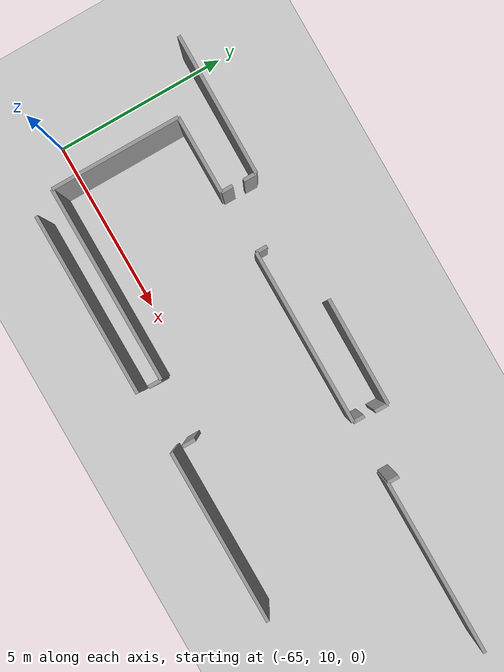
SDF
<sdf version="1.6">
 <world name="default">
  <model name="ground_plane">
   <static>1</static>
   <link name="link">
    <collision name="collision">
     <geometry><plane><normal>0 0 1</normal><size>100 100</size></plane></geometry>
     <surface><friction><ode><mu>100</mu><mu2>50</mu2></ode></friction></surface>
    </collision>
    <visual name="visual">
     <cast_shadows>0</cast_shadows>
     <geometry><plane><normal>0 0 1</normal><size>100 100</size></plane></geometry>
     <material>
      <script><uri>file://media/materials/scripts/gazebo.material</uri><name>Gazebo/Grey</name></script>
     </material>
    </visual>
   </link>
  </model>
  <model name="0510032197_A_40_1_105">
   <static>1</static>
   <link name="Wall_8">
    <collision name="Wall_8_Collision">
     <geometry><box><size>0.375958006584 0.1 2.5</size></box></geometry>
     <pose>0.187979003292 0 1.25 0 0 0</pose>
    </collision>
    <visual name="Wall_8_Visual">
     <pose>0.187979003292 0 1.25 0 0 0</pose>
     <geometry><box><size>0.375958006584 0.1 2.5</size></box></geometry>
     <material>
      <script><uri>file://media/materials/scripts/gazebo.material</uri><name>Gazebo/Grey</name></script>
      <ambient>1 1 1 1</ambient>
     </material>
    </visual>
    <pose>4.04517088423 -10.3551138169 0 0 0 1.57079632679</pose>
   </link>
   <link name="Wall_9">
    <collision name="Wall_9_Collision">
     <geometry><box><size>4.04526062346 0.1 2.5</size></box></geometry>
     <pose>2.02263031173 0 1.25 0 0 0</pose>
    </collision>
    <visual name="Wall_9_Visual">
     <pose>2.02263031173 0 1.25 0 0 0</pose>
     <geometry><box><size>4.04526062346 0.1 2.5</size></box></geometry>
     <material>
      <script><uri>file://media/materials/scripts/gazebo.material</uri><name>Gazebo/Grey</name></script>
      <ambient>1 1 1 1</ambient>
     </material>
    </visual>
    <pose>4.04517088423 -9.97915581032 0 0 0 3.13493174101</pose>
   </link>
   <link name="Wall_20">
    <collision name="Wall_20_Collision">
     <geometry><box><size>0.387015595013 0.1 2.5</size></box></geometry>
     <pose>0.193507797506 0 1.25 0 0 0</pose>
    </collision>
    <visual name="Wall_20_Visual">
     <pose>0.193507797506 0 1.25 0 0 0</pose>
     <geometry><box><size>0.387015595013 0.1 2.5</size></box></geometry>
     <material>
      <script><uri>file://media/materials/scripts/gazebo.material</uri><name>Gazebo/Grey</name></script>
      <ambient>1 1 1 1</ambient>
     </material>
    </visual>
    <pose>10.8776166448 -10.3698572681 0 0 0 1.57079632679</pose>
   </link>
   <link name="Wall_21">
    <collision name="Wall_21_Collision">
     <geometry><box><size>3.09707630205 0.1 2.5</size></box></geometry>
     <pose>1.54853815103 0 1.25 0 0 0</pose>
    </collision>
    <visual name="Wall_21_Visual">
     <pose>1.54853815103 0 1.25 0 0 0</pose>
     <geometry><box><size>3.09707630205 0.1 2.5</size></box></geometry>
     <material>
      <script><uri>file://media/materials/scripts/gazebo.material</uri><name>Gazebo/Grey</name></script>
      <ambient>1 1 1 1</ambient>
     </material>
    </visual>
    <pose>10.8776166448 -9.98284167313 0 0 0 3.13527271475</pose>
   </link>
   <link name="Wall_417">
    <collision name="Wall_417_Collision">
     <geometry><box><size>5.24650796273 0.1 2.5</size></box></geometry>
     <pose>2.62325398137 0 1.25 0 0 0</pose>
    </collision>
    <visual name="Wall_417_Visual">
     <pose>2.62325398137 0 1.25 0 0 0</pose>
     <geometry><box><size>5.24650796273 0.1 2.5</size></box></geometry>
     <material>
      <script><uri>file://media/materials/scripts/gazebo.material</uri><name>Gazebo/Grey</name></script>
      <ambient>1 1 1 1</ambient>
     </material>
    </visual>
    <pose>2.19880781403 -15.4332159789 0 0 0 0.0</pose>
   </link>
   <link name="Wall_418">
    <collision name="Wall_418_Collision">
     <geometry><box><size>5.01061274292 0.1 2.5</size></box></geometry>
     <pose>2.50530637146 0 1.25 0 0 0</pose>
    </collision>
    <visual name="Wall_418_Visual">
     <pose>2.50530637146 0 1.25 0 0 0</pose>
     <geometry><box><size>5.01061274292 0.1 2.5</size></box></geometry>
     <material>
      <script><uri>file://media/materials/scripts/gazebo.material</uri><name>Gazebo/Grey</name></script>
      <ambient>1 1 1 1</ambient>
     </material>
    </visual>
    <pose>9.19521092032 -15.4332159789 0 0 0 0.0</pose>
   </link>
   <link name="Wall_456">
    <collision name="Wall_456_Collision">
     <geometry><box><size>3.73365192745 0.1 2.5</size></box></geometry>
     <pose>1.86682596373 0 1.25 0 0 0</pose>
    </collision>
    <visual name="Wall_456_Visual">
     <pose>1.86682596373 0 1.25 0 0 0</pose>
     <geometry><box><size>3.73365192745 0.1 2.5</size></box></geometry>
     <material>
      <script><uri>file://media/materials/scripts/gazebo.material</uri><name>Gazebo/Grey</name></script>
      <ambient>1 1 1 1</ambient>
     </material>
    </visual>
    <pose>1.80480178955 -14.7351898219 0 0 0 1.57079632679</pose>
   </link>
   <link name="Wall_457">
    <collision name="Wall_457_Collision">
     <geometry><box><size>2.2210500896 0.1 2.5</size></box></geometry>
     <pose>1.1105250448 0 1.25 0 0 0</pose>
    </collision>
    <visual name="Wall_457_Visual">
     <pose>1.1105250448 0 1.25 0 0 0</pose>
     <geometry><box><size>2.2210500896 0.1 2.5</size></box></geometry>
     <material>
      <script><uri>file://media/materials/scripts/gazebo.material</uri><name>Gazebo/Grey</name></script>
      <ambient>1 1 1 1</ambient>
     </material>
    </visual>
    <pose>1.80480178955 -11.0015378945 0 0 0 0.0</pose>
   </link>
   <link name="Wall_458">
    <collision name="Wall_458_Collision">
     <geometry><box><size>0.333634133632 0.1 2.5</size></box></geometry>
     <pose>0.166817066816 0 1.25 0 0 0</pose>
    </collision>
    <visual name="Wall_458_Visual">
     <pose>0.166817066816 0 1.25 0 0 0</pose>
     <geometry><box><size>0.333634133632 0.1 2.5</size></box></geometry>
     <material>
      <script><uri>file://media/materials/scripts/gazebo.material</uri><name>Gazebo/Grey</name></script>
      <ambient>1 1 1 1</ambient>
     </material>
    </visual>
    <pose>4.02585187915 -11.0015378945 0 0 0 1.57079632679</pose>
   </link>
   <link name="Wall_459">
    <collision name="Wall_459_Collision">
     <geometry><box><size>0.319653274698 0.1 2.5</size></box></geometry>
     <pose>0.159826637349 0 1.25 0 0 0</pose>
    </collision>
    <visual name="Wall_459_Visual">
     <pose>0.159826637349 0 1.25 0 0 0</pose>
     <geometry><box><size>0.319653274698 0.1 2.5</size></box></geometry>
     <material>
      <script><uri>file://media/materials/scripts/gazebo.material</uri><name>Gazebo/Grey</name></script>
      <ambient>1 1 1 1</ambient>
     </material>
    </visual>
    <pose>5.81463923029 -10.6679037609 0 0 0 -1.57079632679</pose>
   </link>
   <link name="Wall_460">
    <collision name="Wall_460_Collision">
     <geometry><box><size>5.02586458903 0.1 2.5</size></box></geometry>
     <pose>2.51293229451 0 1.25 0 0 0</pose>
    </collision>
    <visual name="Wall_460_Visual">
     <pose>2.51293229451 0 1.25 0 0 0</pose>
     <geometry><box><size>5.02586458903 0.1 2.5</size></box></geometry>
     <material>
      <script><uri>file://media/materials/scripts/gazebo.material</uri><name>Gazebo/Grey</name></script>
      <ambient>1 1 1 1</ambient>
     </material>
    </visual>
    <pose>5.81463923029 -10.9875570355 0 0 0 0.0</pose>
   </link>
   <link name="Wall_461">
    <collision name="Wall_461_Collision">
     <geometry><box><size>0.322068150332 0.1 2.5</size></box></geometry>
     <pose>0.161034075166 0 1.25 0 0 0</pose>
    </collision>
    <visual name="Wall_461_Visual">
     <pose>0.161034075166 0 1.25 0 0 0</pose>
     <geometry><box><size>0.322068150332 0.1 2.5</size></box></geometry>
     <material>
      <script><uri>file://media/materials/scripts/gazebo.material</uri><name>Gazebo/Grey</name></script>
      <ambient>1 1 1 1</ambient>
     </material>
    </visual>
    <pose>10.8405038193 -10.9875570355 0 0 0 1.57079632679</pose>
   </link>
   <link name="Wall_462">
    <collision name="Wall_462_Collision">
     <geometry><box><size>0.325754013142 0.1 2.5</size></box></geometry>
     <pose>0.162877006571 0 1.25 0 0 0</pose>
    </collision>
    <visual name="Wall_462_Visual">
     <pose>0.162877006571 0 1.25 0 0 0</pose>
     <geometry><box><size>0.325754013142 0.1 2.5</size></box></geometry>
     <material>
      <script><uri>file://media/materials/scripts/gazebo.material</uri><name>Gazebo/Grey</name></script>
      <ambient>1 1 1 1</ambient>
     </material>
    </visual>
    <pose>12.6270033935 -10.6654888852 0 0 0 -1.57079632679</pose>
   </link>
   <link name="Wall_463">
    <collision name="Wall_463_Collision">
     <geometry><box><size>5.03514279541 0.1 2.5</size></box></geometry>
     <pose>2.5175713977 0 1.25 0 0 0</pose>
    </collision>
    <visual name="Wall_463_Visual">
     <pose>2.5175713977 0 1.25 0 0 0</pose>
     <geometry><box><size>5.03514279541 0.1 2.5</size></box></geometry>
     <material>
      <script><uri>file://media/materials/scripts/gazebo.material</uri><name>Gazebo/Grey</name></script>
      <ambient>1 1 1 1</ambient>
     </material>
    </visual>
    <pose>12.6270033935 -10.9912428984 0 0 0 0.0</pose>
   </link>
   <link name="Wall_546">
    <collision name="Wall_546_Collision">
     <geometry><box><size>0.370619860446 0.1 2.5</size></box></geometry>
     <pose>0.185309930223 0 1.25 0 0 0</pose>
    </collision>
    <visual name="Wall_546_Visual">
     <pose>0.185309930223 0 1.25 0 0 0</pose>
     <geometry><box><size>0.370619860446 0.1 2.5</size></box></geometry>
     <material>
      <script><uri>file://media/materials/scripts/gazebo.material</uri><name>Gazebo/Grey</name></script>
      <ambient>1 1 1 1</ambient>
     </material>
    </visual>
    <pose>9.20855628567 -14.7346814271 0 0 0 -1.57079632679</pose>
   </link>
   <link name="Wall_547">
    <collision name="Wall_547_Collision">
     <geometry><box><size>0.373670229667 0.1 2.5</size></box></geometry>
     <pose>0.186835114834 0 1.25 0 0 0</pose>
    </collision>
    <visual name="Wall_547_Visual">
     <pose>0.186835114834 0 1.25 0 0 0</pose>
     <geometry><box><size>0.373670229667 0.1 2.5</size></box></geometry>
     <material>
      <script><uri>file://media/materials/scripts/gazebo.material</uri><name>Gazebo/Grey</name></script>
      <ambient>1 1 1 1</ambient>
     </material>
    </visual>
    <pose>7.44468028318 -15.1053012875 0 0 0 1.57079632679</pose>
   </link>
   <link name="Wall_548">
    <collision name="Wall_548_Collision">
     <geometry><box><size>5.63987961642 0.1 2.5</size></box></geometry>
     <pose>2.81993980821 0 1.25 0 0 0</pose>
    </collision>
    <visual name="Wall_548_Visual">
     <pose>2.81993980821 0 1.25 0 0 0</pose>
     <geometry><box><size>5.63987961642 0.1 2.5</size></box></geometry>
     <material>
      <script><uri>file://media/materials/scripts/gazebo.material</uri><name>Gazebo/Grey</name></script>
      <ambient>1 1 1 1</ambient>
     </material>
    </visual>
    <pose>7.44468028318 -14.7316310578 0 0 0 -3.14096165354</pose>
   </link>
   <pose>-65.5 24.1613162343 0 0 0 0</pose>
  </model>
 </world>
</sdf>
